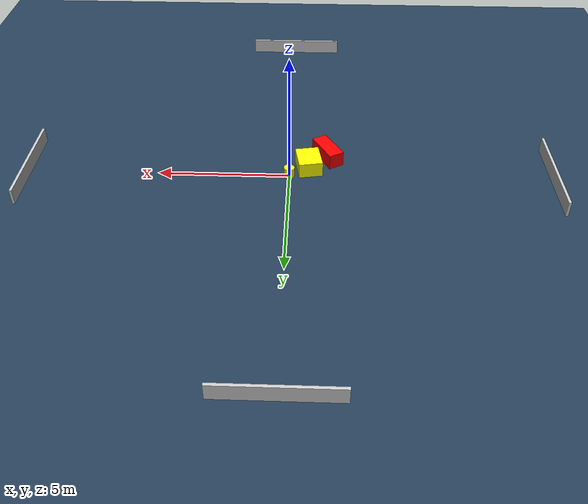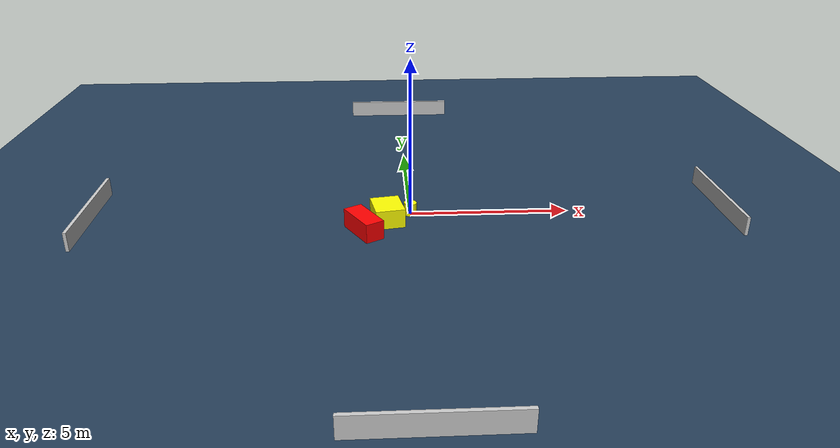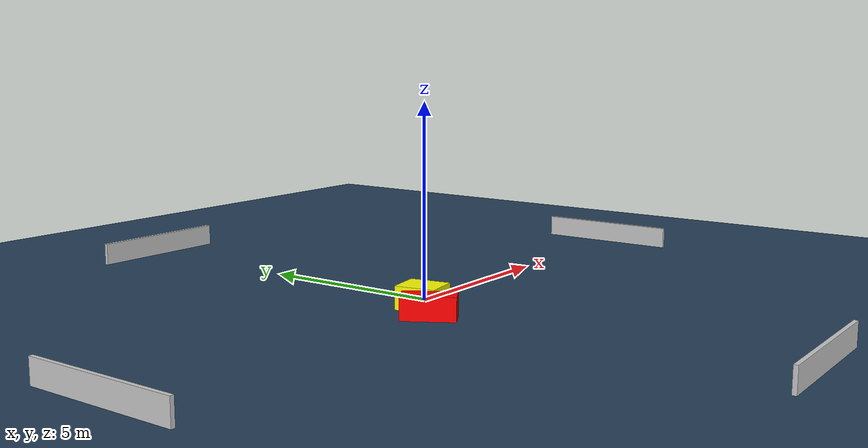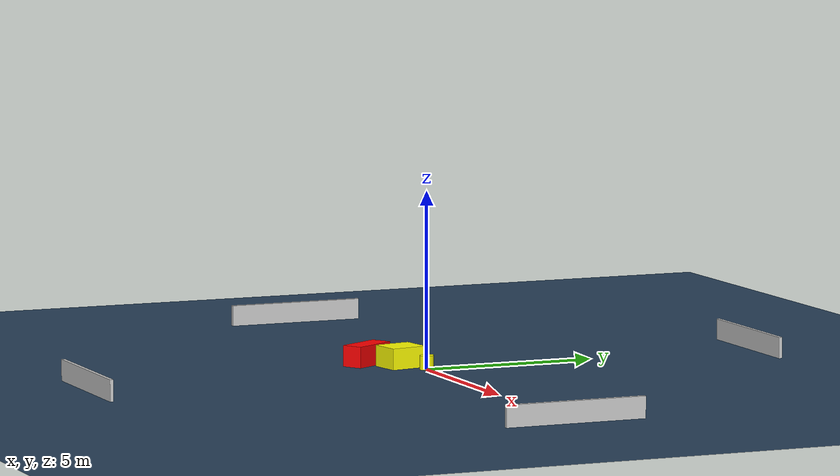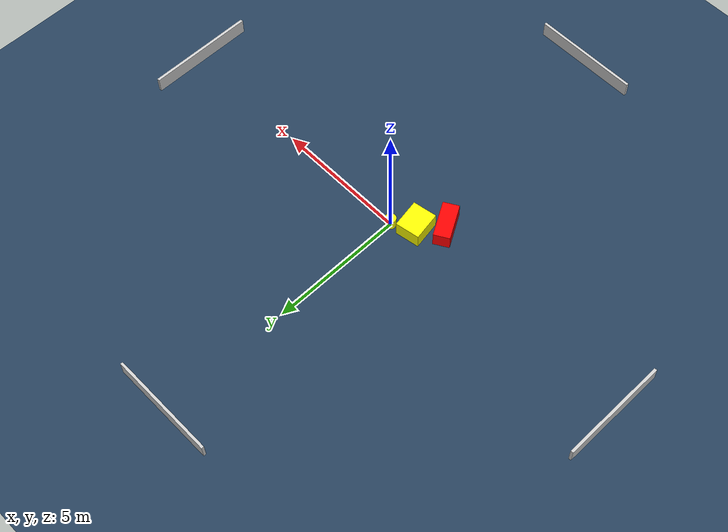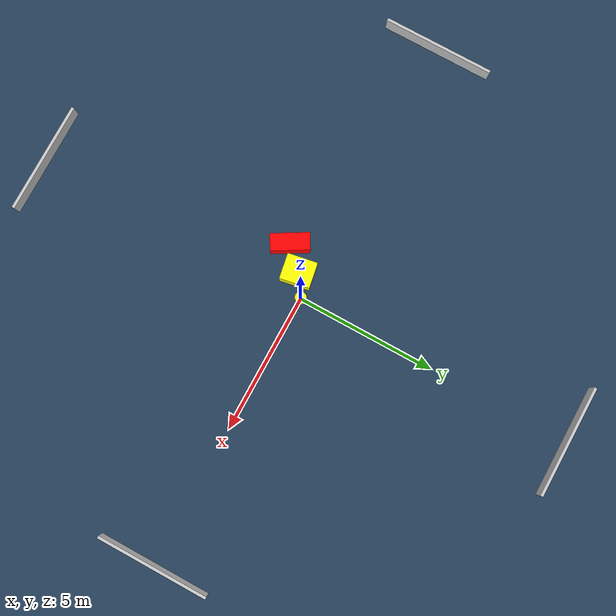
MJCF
<?xml version="1.0" ?>
<mujoco model="generated_environment">
  <option timestep="0.01" integrator="RK4" cone="elliptic"/>
  <default>
    <geom density="1"/>
  </default>
  <asset>
    <texture builtin="gradient" height="3072" name="skybox" rgb1="0.3 0.5 0.7" rgb2="0 0 0" type="skybox" width="512"/>
    <texture builtin="checker" height="300" name="groundplane" rgb1="0.2 0.3 0.4" rgb2="0.1 0.2 0.3" type="2d" width="300"/>
    <material name="groundplane" reflectance="0.2" texrepeat="5 5" texture="groundplane"/>
  </asset>
  <worldbody>
    <light dir="0 0 -1" directional="true" pos="0 0 1.5"/>
    <geom condim="3" friction="0.5 0.005 0.001" material="groundplane" name="floor" pos="0 0 0" size="0 0 0.05" type="plane"/>
    <body name="walls">
      <geom name="wall_1" condim="4" pos="-10.0 0.0 0.3" rgba="0.800000011920929 0.800000011920929 0.800000011920929 1.0" size="0.05 2.0 0.3" type="box"/>
      <geom name="wall_2" condim="4" pos="10.0 0.0 0.3" rgba="0.800000011920929 0.800000011920929 0.800000011920929 1.0" size="0.05 2.0 0.3" type="box"/>
      <geom name="wall_3" condim="4" pos="0.0 -10.0 0.3" rgba="0.800000011920929 0.800000011920929 0.800000011920929 1.0" size="2.0 0.05 0.3" type="box"/>
      <geom name="wall_4" condim="4" pos="0.0 10.0 0.3" rgba="0.800000011920929 0.800000011920929 0.800000011920929 1.0" size="2.0 0.05 0.3" type="box"/>
    </body>
    <body name="robot">
      <joint name="joint_x" type="slide" pos="0 0 0" axis="1 0 0"/>
      <joint name="joint_y" type="slide" pos="0 0 0" axis="0 1 0"/>
      <geom name="robot" type="cylinder" pos="0.0 0.0 0.2" size="0.2 0.2 0.0" mass="5.0" friction="1.0 0.005 0.0001" condim="4" rgba="1.0 1.0 0.0 1.0"/>
    </body>
    <body name="obstacle_1_movable">
      <geom name="obstacle_1_movable" condim="4" pos="-0.7384968005554811 -0.48544929385761604 0.3" euler="0 0 189.95438329171708" friction="0.0 0.005 0.001" rgba="1.0 1.0 0.0 1.0" size="0.4547245754002109 0.5318738490728864 0.3" type="box" mass="0.1"/>
      <joint type="free"/>
    </body>
    <body name="obstacle_2_static">
      <geom name="obstacle_2_static" condim="4" pos="-1.4690201071352087 -1.20929134811279 0.3" euler="0 0 300.2795080404165" friction="0.0 0.005 0.001" rgba="1.0 0.0 0.0 1.0" size="0.679584856708502 0.3005919525978771 0.3" type="box"/>
    </body>
  </worldbody>
  <actuator>
    <motor name="actuator_x" joint="joint_x" gear="1" ctrlrange="-1 1"/>
    <motor name="actuator_y" joint="joint_y" gear="1" ctrlrange="-1 1"/>
  </actuator>
</mujoco>
